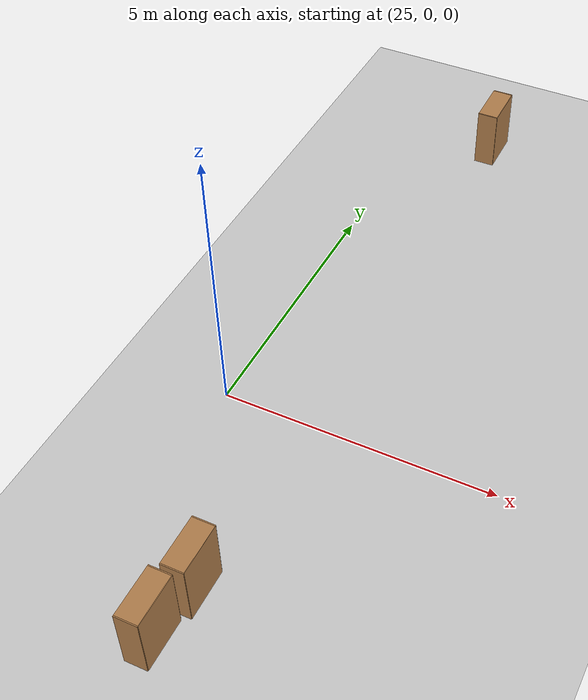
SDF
<sdf version="1.6">
 <world name="default">
  <model name="ground_plane">
   <static>1</static>
   <link name="link">
    <collision name="collision">
     <geometry><plane><normal>0 0 1</normal><size>100 100</size></plane></geometry>
     <surface>
      <contact><collide_bitmask>65535</collide_bitmask></contact>
      <friction><ode><mu>100</mu><mu2>50</mu2></ode></friction>
     </surface>
    </collision>
    <visual name="visual">
     <cast_shadows>0</cast_shadows>
     <geometry><plane><normal>0 0 1</normal><size>100 100</size></plane></geometry>
     <material>
      <script><uri>file://media/materials/scripts/gazebo.material</uri><name>Gazebo/Grey</name></script>
     </material>
    </visual>
   </link>
  </model>
  <model name="30x30env"><static>1</static><pose>32.1206 3.39752 0 0 -0 0</pose></model>
  <model name="bookshelf_clone_2_clone_clone_0_clone_3_clone_0_clone_1_clone_clone_0_clone_1_clone_1_clone_1_clone_clone">
   <static>1</static>
   <link name="link">
    <inertial><mass>1</mass></inertial>
    <collision name="back">
     <pose>0 0.005 0.6 0 -0 0</pose>
     <geometry><box><size>0.9 0.01 1.2</size></box></geometry>
    </collision>
    <visual name="visual1">
     <pose>0 0.005 0.6 0 -0 0</pose>
     <geometry><box><size>0.9 0.01 1.2</size></box></geometry>
     <material>
      <script><uri>file://media/materials/scripts/gazebo.material</uri><name>Gazebo/Wood</name></script>
     </material>
    </visual>
    <collision name="left_side">
     <pose>0.45 -0.195 0.6 0 -0 0</pose>
     <geometry><box><size>0.02 0.4 1.2</size></box></geometry>
    </collision>
    <visual name="visual2">
     <pose>0.45 -0.195 0.6 0 -0 0</pose>
     <geometry><box><size>0.02 0.4 1.2</size></box></geometry>
     <material>
      <script><uri>file://media/materials/scripts/gazebo.material</uri><name>Gazebo/Wood</name></script>
     </material>
    </visual>
    <collision name="right_side">
     <pose>-0.45 -0.195 0.6 0 -0 0</pose>
     <geometry><box><size>0.02 0.4 1.2</size></box></geometry>
    </collision>
    <visual name="visual3">
     <pose>-0.45 -0.195 0.6 0 -0 0</pose>
     <geometry><box><size>0.02 0.4 1.2</size></box></geometry>
     <material>
      <script><uri>file://media/materials/scripts/gazebo.material</uri><name>Gazebo/Wood</name></script>
     </material>
    </visual>
    <collision name="bottom">
     <pose>0 -0.195 0.03 0 -0 0</pose>
     <geometry><box><size>0.88 0.4 0.06</size></box></geometry>
    </collision>
    <visual name="visual4">
     <pose>0 -0.195 0.03 0 -0 0</pose>
     <geometry><box><size>0.88 0.4 0.06</size></box></geometry>
     <material>
      <script><uri>file://media/materials/scripts/gazebo.material</uri><name>Gazebo/Wood</name></script>
     </material>
    </visual>
    <collision name="top">
     <pose>0 -0.195 1.19 0 -0 0</pose>
     <geometry><box><size>0.88 0.4 0.02</size></box></geometry>
    </collision>
    <visual name="visual5">
     <pose>0 -0.195 1.19 0 -0 0</pose>
     <geometry><box><size>0.88 0.4 0.02</size></box></geometry>
     <material>
      <script><uri>file://media/materials/scripts/gazebo.material</uri><name>Gazebo/Wood</name></script>
     </material>
    </visual>
    <collision name="low_shelf">
     <pose>0 -0.195 0.43 0 -0 0</pose>
     <geometry><box><size>0.88 0.4 0.02</size></box></geometry>
    </collision>
    <visual name="visual6">
     <pose>0 -0.195 0.43 0 -0 0</pose>
     <geometry><box><size>0.88 0.4 0.02</size></box></geometry>
     <material>
      <script><uri>file://media/materials/scripts/gazebo.material</uri><name>Gazebo/Wood</name></script>
     </material>
    </visual>
    <collision name="high_shelf">
     <pose>0 -0.195 0.8 0 -0 0</pose>
     <geometry><box><size>0.88 0.4 0.02</size></box></geometry>
    </collision>
    <visual name="visual7">
     <pose>0 -0.195 0.8 0 -0 0</pose>
     <geometry><box><size>0.88 0.4 0.02</size></box></geometry>
     <material>
      <script><uri>file://media/materials/scripts/gazebo.material</uri><name>Gazebo/Wood</name></script>
     </material>
    </visual>
   </link>
   <pose>26.8093 8.50493 0 0 0 -1.56003</pose>
  </model>
  <model name="bookshelf_clone_2_clone_clone_0_clone_3_clone_0_clone_1_clone_clone_clone_1_clone_0">
   <static>1</static>
   <link name="link">
    <inertial><mass>1</mass></inertial>
    <collision name="back">
     <pose>0 0.005 0.6 0 -0 0</pose>
     <geometry><box><size>0.9 0.01 1.2</size></box></geometry>
    </collision>
    <visual name="visual1">
     <pose>0 0.005 0.6 0 -0 0</pose>
     <geometry><box><size>0.9 0.01 1.2</size></box></geometry>
     <material>
      <script><uri>file://media/materials/scripts/gazebo.material</uri><name>Gazebo/Wood</name></script>
     </material>
    </visual>
    <collision name="left_side">
     <pose>0.45 -0.195 0.6 0 -0 0</pose>
     <geometry><box><size>0.02 0.4 1.2</size></box></geometry>
    </collision>
    <visual name="visual2">
     <pose>0.45 -0.195 0.6 0 -0 0</pose>
     <geometry><box><size>0.02 0.4 1.2</size></box></geometry>
     <material>
      <script><uri>file://media/materials/scripts/gazebo.material</uri><name>Gazebo/Wood</name></script>
     </material>
    </visual>
    <collision name="right_side">
     <pose>-0.45 -0.195 0.6 0 -0 0</pose>
     <geometry><box><size>0.02 0.4 1.2</size></box></geometry>
    </collision>
    <visual name="visual3">
     <pose>-0.45 -0.195 0.6 0 -0 0</pose>
     <geometry><box><size>0.02 0.4 1.2</size></box></geometry>
     <material>
      <script><uri>file://media/materials/scripts/gazebo.material</uri><name>Gazebo/Wood</name></script>
     </material>
    </visual>
    <collision name="bottom">
     <pose>0 -0.195 0.03 0 -0 0</pose>
     <geometry><box><size>0.88 0.4 0.06</size></box></geometry>
    </collision>
    <visual name="visual4">
     <pose>0 -0.195 0.03 0 -0 0</pose>
     <geometry><box><size>0.88 0.4 0.06</size></box></geometry>
     <material>
      <script><uri>file://media/materials/scripts/gazebo.material</uri><name>Gazebo/Wood</name></script>
     </material>
    </visual>
    <collision name="top">
     <pose>0 -0.195 1.19 0 -0 0</pose>
     <geometry><box><size>0.88 0.4 0.02</size></box></geometry>
    </collision>
    <visual name="visual5">
     <pose>0 -0.195 1.19 0 -0 0</pose>
     <geometry><box><size>0.88 0.4 0.02</size></box></geometry>
     <material>
      <script><uri>file://media/materials/scripts/gazebo.material</uri><name>Gazebo/Wood</name></script>
     </material>
    </visual>
    <collision name="low_shelf">
     <pose>0 -0.195 0.43 0 -0 0</pose>
     <geometry><box><size>0.88 0.4 0.02</size></box></geometry>
    </collision>
    <visual name="visual6">
     <pose>0 -0.195 0.43 0 -0 0</pose>
     <geometry><box><size>0.88 0.4 0.02</size></box></geometry>
     <material>
      <script><uri>file://media/materials/scripts/gazebo.material</uri><name>Gazebo/Wood</name></script>
     </material>
    </visual>
    <collision name="high_shelf">
     <pose>0 -0.195 0.8 0 -0 0</pose>
     <geometry><box><size>0.88 0.4 0.02</size></box></geometry>
    </collision>
    <visual name="visual7">
     <pose>0 -0.195 0.8 0 -0 0</pose>
     <geometry><box><size>0.88 0.4 0.02</size></box></geometry>
     <material>
      <script><uri>file://media/materials/scripts/gazebo.material</uri><name>Gazebo/Wood</name></script>
     </material>
    </visual>
   </link>
   <pose>26.6019 -4.58341 0 0 0 -1.56003</pose>
  </model>
  <model name="bookshelf_clone_2_clone_clone_0_clone_3_clone_0_clone_1_clone_clone_clone_1_clone_1">
   <static>1</static>
   <link name="link">
    <inertial><mass>1</mass></inertial>
    <collision name="back">
     <pose>0 0.005 0.6 0 -0 0</pose>
     <geometry><box><size>0.9 0.01 1.2</size></box></geometry>
    </collision>
    <visual name="visual1">
     <pose>0 0.005 0.6 0 -0 0</pose>
     <geometry><box><size>0.9 0.01 1.2</size></box></geometry>
     <material>
      <script><uri>file://media/materials/scripts/gazebo.material</uri><name>Gazebo/Wood</name></script>
     </material>
    </visual>
    <collision name="left_side">
     <pose>0.45 -0.195 0.6 0 -0 0</pose>
     <geometry><box><size>0.02 0.4 1.2</size></box></geometry>
    </collision>
    <visual name="visual2">
     <pose>0.45 -0.195 0.6 0 -0 0</pose>
     <geometry><box><size>0.02 0.4 1.2</size></box></geometry>
     <material>
      <script><uri>file://media/materials/scripts/gazebo.material</uri><name>Gazebo/Wood</name></script>
     </material>
    </visual>
    <collision name="right_side">
     <pose>-0.45 -0.195 0.6 0 -0 0</pose>
     <geometry><box><size>0.02 0.4 1.2</size></box></geometry>
    </collision>
    <visual name="visual3">
     <pose>-0.45 -0.195 0.6 0 -0 0</pose>
     <geometry><box><size>0.02 0.4 1.2</size></box></geometry>
     <material>
      <script><uri>file://media/materials/scripts/gazebo.material</uri><name>Gazebo/Wood</name></script>
     </material>
    </visual>
    <collision name="bottom">
     <pose>0 -0.195 0.03 0 -0 0</pose>
     <geometry><box><size>0.88 0.4 0.06</size></box></geometry>
    </collision>
    <visual name="visual4">
     <pose>0 -0.195 0.03 0 -0 0</pose>
     <geometry><box><size>0.88 0.4 0.06</size></box></geometry>
     <material>
      <script><uri>file://media/materials/scripts/gazebo.material</uri><name>Gazebo/Wood</name></script>
     </material>
    </visual>
    <collision name="top">
     <pose>0 -0.195 1.19 0 -0 0</pose>
     <geometry><box><size>0.88 0.4 0.02</size></box></geometry>
    </collision>
    <visual name="visual5">
     <pose>0 -0.195 1.19 0 -0 0</pose>
     <geometry><box><size>0.88 0.4 0.02</size></box></geometry>
     <material>
      <script><uri>file://media/materials/scripts/gazebo.material</uri><name>Gazebo/Wood</name></script>
     </material>
    </visual>
    <collision name="low_shelf">
     <pose>0 -0.195 0.43 0 -0 0</pose>
     <geometry><box><size>0.88 0.4 0.02</size></box></geometry>
    </collision>
    <visual name="visual6">
     <pose>0 -0.195 0.43 0 -0 0</pose>
     <geometry><box><size>0.88 0.4 0.02</size></box></geometry>
     <material>
      <script><uri>file://media/materials/scripts/gazebo.material</uri><name>Gazebo/Wood</name></script>
     </material>
    </visual>
    <collision name="high_shelf">
     <pose>0 -0.195 0.8 0 -0 0</pose>
     <geometry><box><size>0.88 0.4 0.02</size></box></geometry>
    </collision>
    <visual name="visual7">
     <pose>0 -0.195 0.8 0 -0 0</pose>
     <geometry><box><size>0.88 0.4 0.02</size></box></geometry>
     <material>
      <script><uri>file://media/materials/scripts/gazebo.material</uri><name>Gazebo/Wood</name></script>
     </material>
    </visual>
   </link>
   <pose>26.7259 -3.59262 0 0 0 -1.56003</pose>
  </model>
 </world>
</sdf>
